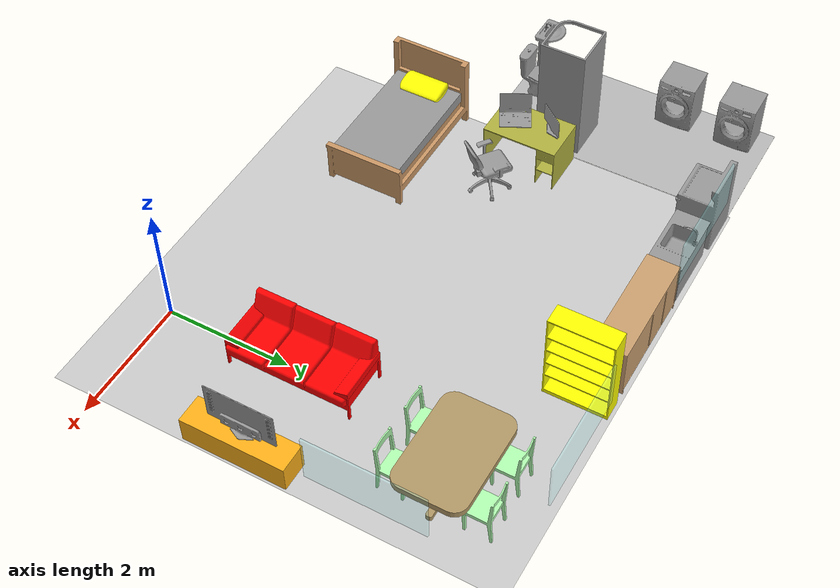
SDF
<sdf version="1.6">
 <world name="default">
  <model name="rai_tv_table">
   <link name="link_2">
    <visual name="visual">
     <pose>0 0 0.22 1.57 -0 0</pose>
     <geometry><mesh><uri>model://rai_tv_table/meshes/rai_tv_table.STL</uri><scale>1 1 1</scale></mesh></geometry>
     <material>
      <lighting>1</lighting>
      <script><uri>file://media/materials/scripts/gazebo.material</uri><name>Gazebo/Grey</name></script>
      <ambient>1 0.7 0.1 1</ambient>
      <diffuse>1 0.7 0.1 1</diffuse>
      <specular>0.01 0.01 0.01 1</specular>
      <emissive>0 0 0 1</emissive>
      <shader type="vertex"><normal_map>__default__</normal_map></shader>
     </material>
    </visual>
    <collision name="collision">
     <pose>0 -0.01 0.22 1.57 -0 0</pose>
     <geometry><box><size>1.65 0.44 0.45</size></box></geometry>
    </collision>
   </link>
   <static>1</static>
   <pose>1.50714 2.27374 0 0 0 -1.56966</pose>
  </model>
  <model name="rai_sofa">
   <link name="link_0">
    <visual name="visual">
     <pose>0 0 0 1.57 -0 0</pose>
     <geometry><mesh><uri>model://rai_sofa/meshes/rai_sofa.STL</uri><scale>1 1 1</scale></mesh></geometry>
     <material>
      <lighting>1</lighting>
      <script><uri>file://media/materials/scripts/gazebo.material</uri><name>Gazebo/Grey</name></script>
      <ambient>1 0 0 1</ambient>
      <diffuse>0.7 0.7 0.7 1</diffuse>
      <specular>0.01 0.01 0.01 1</specular>
      <emissive>0 0 0 1</emissive>
      <shader type="vertex"><normal_map>__default__</normal_map></shader>
     </material>
    </visual>
    <collision name="collision">
     <pose>-0.97 -0.45 0.4 0 -0 0</pose>
     <geometry><box><size>2 0.9 0.8</size></box></geometry>
    </collision>
   </link>
   <static>1</static>
   <pose>-0.482908 3.22557 0 0 -0 1.57101</pose>
  </model>
  <model name="rai_dinner_table">
   <link name="link_0">
    <visual name="visual">
     <pose>0 0 0.6 1.57 -0 0</pose>
     <geometry>
      <mesh><uri>model://rai_dinning_table/meshes/rai_dinning_table.STL</uri><scale>1 1 1</scale></mesh>
     </geometry>
     <material>
      <lighting>1</lighting>
      <script><uri>file://media/materials/scripts/gazebo.material</uri><name>Gazebo/Grey</name></script>
      <ambient>0.7 0.6 0.4 1</ambient>
      <diffuse>0.7 0.6 0.4 1</diffuse>
      <specular>0.01 0.01 0.01 1</specular>
      <emissive>0 0 0 1</emissive>
      <shader type="vertex"><normal_map>__default__</normal_map></shader>
     </material>
    </visual>
    <collision name="collision">
     <pose>0 0 0.6 1.57 -0 0</pose>
     <geometry>
      <mesh><uri>model://rai_dinning_table/meshes/rai_dinning_table.STL</uri><scale>1 1 1</scale></mesh>
     </geometry>
    </collision>
   </link>
   <static>1</static>
   <pose>0.516294 4.96542 0 0 -0 0</pose>
  </model>
  <model name="rai_chair">
   <link name="link_2">
    <visual name="visual">
     <pose>0 0.5 0 1.57 -0 0.26</pose>
     <geometry><mesh><uri>model://rai_chair/meshes/rai_chair.STL</uri><scale>1 1 1</scale></mesh></geometry>
     <material>
      <lighting>1</lighting>
      <script><uri>file://media/materials/scripts/gazebo.material</uri><name>Gazebo/Grey</name></script>
      <ambient>0 1 0.3 1</ambient>
      <diffuse>0.7 1 0.7 1</diffuse>
      <specular>0.01 0.01 0.01 1</specular>
      <emissive>0 0 0 1</emissive>
      <shader type="vertex"><normal_map>__default__</normal_map></shader>
     </material>
    </visual>
    <collision name="collision">
     <pose>0 0.5 0 1.57 -0 0.26</pose>
     <geometry><mesh><uri>model://rai_chair/meshes/rai_chair.STL</uri><scale>1 1 1</scale></mesh></geometry>
    </collision>
   </link>
   <static>1</static>
   <pose>0.144447 4.26667 0 0 -0 1.56943</pose>
  </model>
  <model name="rai_individual_bed">
   <link name="link_0">
    <pose>0 1.1e-05 0.014304 1.57 -0 0</pose>
    <inertial>
     <mass>2.77175</mass>
     <inertia><ixx>1.30512</ixx><ixy>0</ixy><ixz>0</ixz><iyy>1.45572</iyy><iyz>0</iyz><izz>0.612565</izz></inertia>
    </inertial>
    <gravity>0</gravity>
    <visual name="visual">
     <geometry>
      <mesh><uri>model://rai_individual_bed/meshes/rai_individual_bed_frame.STL</uri><scale>1 1 1</scale></mesh>
     </geometry>
     <material>
      <lighting>1</lighting>
      <script><uri>file://media/materials/scripts/gazebo.material</uri><name>Gazebo/Grey</name></script>
      <ambient>0.8 0.6 0.4 1</ambient>
      <diffuse>0.8 0.6 0.4 1</diffuse>
      <specular>0.01 0.01 0.01 1</specular>
      <emissive>0 0 0 1</emissive>
      <shader type="vertex"><normal_map>__default__</normal_map></shader>
     </material>
    </visual>
    <collision name="collision">
     <pose>0 0.34 0 0 -0 0</pose>
     <geometry><box><size>1.28532 0.67 2.18647</size></box></geometry>
     <surface>
      <friction>
       <ode><mu>1</mu><mu2>1</mu2><fdir1>0 0 0</fdir1><slip1>0</slip1><slip2>0</slip2></ode>
       <torsional>
        <coefficient>1</coefficient>
        <patch_radius>0</patch_radius>
        <surface_radius>0</surface_radius>
        <use_patch_radius>1</use_patch_radius>
        <ode><slip>0</slip></ode>
       </torsional>
      </friction>
      <bounce><restitution_coefficient>0</restitution_coefficient><threshold>1e+06</threshold></bounce>
      <contact>
       <collide_without_contact>0</collide_without_contact>
       <collide_without_contact_bitmask>1</collide_without_contact_bitmask>
       <collide_bitmask>1</collide_bitmask>
       <ode>
        <soft_cfm>0</soft_cfm>
        <soft_erp>0.2</soft_erp>
        <kp>1e+13</kp>
        <kd>1</kd>
        <max_vel>0.01</max_vel>
        <min_depth>0</min_depth>
       </ode>
       <bullet>
        <split_impulse>1</split_impulse>
        <split_impulse_penetration_threshold>-0.01</split_impulse_penetration_threshold>
        <soft_cfm>0</soft_cfm>
        <soft_erp>0.2</soft_erp>
        <kp>1e+13</kp>
        <kd>1</kd>
       </bullet>
      </contact>
     </surface>
    </collision>
   </link>
   <link name="link_1">
    <pose>0 0 0 1.57 -0 0</pose>
    <inertial>
     <mass>1</mass>
     <inertia>
      <ixx>0.166667</ixx>
      <ixy>0</ixy>
      <ixz>0</ixz>
      <iyy>0.166667</iyy>
      <iyz>0</iyz>
      <izz>0.166667</izz>
     </inertia>
    </inertial>
    <gravity>0</gravity>
    <visual name="visual">
     <geometry>
      <mesh><uri>model://rai_individual_bed/meshes/rai_individual_mattres.STL</uri><scale>1 1 1</scale></mesh>
     </geometry>
     <material>
      <lighting>1</lighting>
      <script><uri>file://media/materials/scripts/gazebo.material</uri><name>Gazebo/Grey</name></script>
      <ambient>0.95 0.95 0.95 1</ambient>
      <diffuse>0.95 0.95 0.95 1</diffuse>
      <specular>0.01 0.01 0.01 1</specular>
      <emissive>0 0 0 1</emissive>
      <shader type="vertex"><normal_map>__default__</normal_map></shader>
     </material>
    </visual>
   </link>
   <link name="link_2">
    <pose>0 0 0 1.57 -0 0</pose>
    <inertial>
     <mass>1</mass>
     <inertia>
      <ixx>0.166667</ixx>
      <ixy>0</ixy>
      <ixz>0</ixz>
      <iyy>0.166667</iyy>
      <iyz>0</iyz>
      <izz>0.166667</izz>
     </inertia>
    </inertial>
    <gravity>0</gravity>
    <visual name="visual">
     <geometry>
      <mesh><uri>model://rai_individual_bed/meshes/rai_individual_pillow.STL</uri><scale>1 1 1</scale></mesh>
     </geometry>
     <material>
      <lighting>1</lighting>
      <script><uri>file://media/materials/scripts/gazebo.material</uri><name>Gazebo/Grey</name></script>
      <ambient>1 1 0 1</ambient>
      <diffuse>0.7 0.7 0.7 1</diffuse>
      <specular>0.01 0.01 0.01 1</specular>
      <emissive>0 0 0 1</emissive>
      <shader type="vertex"><normal_map>__default__</normal_map></shader>
     </material>
    </visual>
   </link>
   <static>1</static>
   <pose>-4.5208 1.1886 0 0 -0 1.57029</pose>
  </model>
  <model name="rai_computer_table">
   <link name="link_6">
    <visual name="visual">
     <pose>0 0 0 1.57 -0 0</pose>
     <geometry>
      <mesh><uri>model://rai_computer_table/meshes/rai_computer_table.STL</uri><scale>1 1 1</scale></mesh>
     </geometry>
     <material>
      <lighting>1</lighting>
      <script><uri>file://media/materials/scripts/gazebo.material</uri><name>Gazebo/Grey</name></script>
      <ambient>1 0.5 0.25 1</ambient>
      <diffuse>0.7 0.7 0.25 1</diffuse>
      <specular>0.01 0.01 0.01 1</specular>
      <emissive>0 0 0 1</emissive>
      <shader type="vertex"><normal_map>__default__</normal_map></shader>
     </material>
    </visual>
    <collision name="collision">
     <pose>0 0 0 1.57 -0 0</pose>
     <geometry>
      <mesh><uri>model://rai_computer_table/meshes/rai_computer_table.STL</uri><scale>1 1 1</scale></mesh>
     </geometry>
    </collision>
   </link>
   <static>1</static>
   <pose>-5.24344 3.11187 0 0 -0 1.57066</pose>
  </model>
  <model name="rai_desktop_chair">
   <link name="link_1">
    <pose>0 0 0.44 1.57312 -0 0</pose>
    <visual name="visual">
     <geometry>
      <mesh><uri>model://rai_desktop_chair/meshes/rai_desktop_chair.STL</uri><scale>1 1 1</scale></mesh>
     </geometry>
     <material>
      <lighting>1</lighting>
      <script><uri>file://media/materials/scripts/gazebo.material</uri><name>Gazebo/Grey</name></script>
      <ambient>0.1 0.1 0.1 0.1</ambient>
      <diffuse>0.3 0.3 0.3 0.5</diffuse>
      <specular>0.01 0.01 0.01 1</specular>
      <emissive>0 0 0 0.5</emissive>
      <shader type="vertex"><normal_map>__default__</normal_map></shader>
     </material>
    </visual>
    <collision name="collision">
     <pose>0.24 0.04 -0.33 0 -0 0</pose>
     <geometry><box><size>0.68 0.98 0.65</size></box></geometry>
    </collision>
   </link>
   <static>1</static>
   <pose>-4.54757 3.20845 0 0 0 -2.19838</pose>
  </model>
  <model name="rai_chair_0">
   <link name="link_2">
    <visual name="visual">
     <pose>0 0.5 0 1.57 -0 0.26</pose>
     <geometry><mesh><uri>model://rai_chair/meshes/rai_chair.STL</uri><scale>1 1 1</scale></mesh></geometry>
     <material>
      <lighting>1</lighting>
      <script><uri>file://media/materials/scripts/gazebo.material</uri><name>Gazebo/Grey</name></script>
      <ambient>0 1 0.3 1</ambient>
      <diffuse>0.7 1 0.7 1</diffuse>
      <specular>0.01 0.01 0.01 1</specular>
      <emissive>0 0 0 1</emissive>
      <shader type="vertex"><normal_map>__default__</normal_map></shader>
     </material>
    </visual>
    <collision name="collision">
     <pose>0 0.5 0 1.57 -0 0.26</pose>
     <geometry><mesh><uri>model://rai_chair/meshes/rai_chair.STL</uri><scale>1 1 1</scale></mesh></geometry>
    </collision>
   </link>
   <static>1</static>
   <pose>0.907553 4.25434 0 0 -0 1.56758</pose>
  </model>
  <model name="rai_tv">
   <link name="link_3">
    <visual name="visual">
     <pose>0 0 0.4 1.57 -0 0</pose>
     <geometry><mesh><uri>model://rai_tv/meshes/rai_tv.STL</uri><scale>1 1 1</scale></mesh></geometry>
     <material>
      <lighting>1</lighting>
      <script><uri>file://media/materials/scripts/gazebo.material</uri><name>Gazebo/Grey</name></script>
      <ambient>0.1 0.1 0.1 0.1</ambient>
      <diffuse>0.3 0.3 0.3 0.5</diffuse>
      <specular>0.01 0.01 0.01 1</specular>
      <emissive>0 0 0 0.5</emissive>
      <shader type="vertex"><normal_map>__default__</normal_map></shader>
     </material>
    </visual>
    <collision name="collision">
     <pose>0 0.01 0.36 0 -0 0</pose>
     <geometry><box><size>1.1 0.05 0.71</size></box></geometry>
    </collision>
   </link>
   <static>1</static>
   <pose>1.49815 2.31639 0.442289 0 0 -1.56937</pose>
  </model>
  <model name="library_1">
   <link name="link_1">
    <visual name="visual">
     <pose>0 0 1.235 1.57 -0 0</pose>
     <geometry>
      <mesh><uri>model://rai_self_book/meshes/rai_self_book.STL</uri><scale>1 1 1</scale></mesh>
     </geometry>
     <material>
      <lighting>1</lighting>
      <script><uri>file://media/materials/scripts/gazebo.material</uri><name>Gazebo/Grey</name></script>
      <ambient>1 1 0 1</ambient>
      <diffuse>1 1 0 1</diffuse>
      <specular>0.01 0.01 0.01 1</specular>
      <emissive>0 0 0 1</emissive>
      <shader type="vertex"><normal_map>__default__</normal_map></shader>
     </material>
    </visual>
    <collision name="collision">
     <pose>-0.01 -0.16 0.78 0 -0 0</pose>
     <geometry><box><size>1.02 0.32 1.56</size></box></geometry>
    </collision>
   </link>
   <static>1</static>
   <pose>-1.65718 5.82729 0 0 -0 1.57218</pose>
  </model>
  <model name="rai_chair_1">
   <link name="link_2">
    <visual name="visual">
     <pose>0 0.5 0 1.57 -0 0.26</pose>
     <geometry><mesh><uri>model://rai_chair/meshes/rai_chair.STL</uri><scale>1 1 1</scale></mesh></geometry>
     <material>
      <lighting>1</lighting>
      <script><uri>file://media/materials/scripts/gazebo.material</uri><name>Gazebo/Grey</name></script>
      <ambient>0 1 0.3 1</ambient>
      <diffuse>0.7 1 0.7 1</diffuse>
      <specular>0.01 0.01 0.01 1</specular>
      <emissive>0 0 0 1</emissive>
      <shader type="vertex"><normal_map>__default__</normal_map></shader>
     </material>
    </visual>
    <collision name="collision">
     <pose>0 0.5 0 1.57 -0 0.26</pose>
     <geometry><mesh><uri>model://rai_chair/meshes/rai_chair.STL</uri><scale>1 1 1</scale></mesh></geometry>
    </collision>
   </link>
   <static>1</static>
   <pose>0.894623 5.69353 0 0 0 -1.57213</pose>
  </model>
  <model name="rai_chair_2">
   <link name="link_2">
    <visual name="visual">
     <pose>0 0.5 0 1.57 -0 0.26</pose>
     <geometry><mesh><uri>model://rai_chair/meshes/rai_chair.STL</uri><scale>1 1 1</scale></mesh></geometry>
     <material>
      <lighting>1</lighting>
      <script><uri>file://media/materials/scripts/gazebo.material</uri><name>Gazebo/Grey</name></script>
      <ambient>0 1 0.3 1</ambient>
      <diffuse>0.7 1 0.7 1</diffuse>
      <specular>0.01 0.01 0.01 1</specular>
      <emissive>0 0 0 1</emissive>
      <shader type="vertex"><normal_map>__default__</normal_map></shader>
     </material>
    </visual>
    <collision name="collision">
     <pose>0 0.5 0 1.57 -0 0.26</pose>
     <geometry><mesh><uri>model://rai_chair/meshes/rai_chair.STL</uri><scale>1 1 1</scale></mesh></geometry>
    </collision>
   </link>
   <static>1</static>
   <pose>0.12405 5.68717 0 0 0 -1.56906</pose>
  </model>
  <model name="rai_kitchen_table">
   <link name="link_0">
    <visual name="visual">
     <pose>0 0.25 0.4 1.57 -0 0</pose>
     <geometry>
      <mesh><uri>model://rai_kitchen_table/meshes/rai_kitchen_table.STL</uri><scale>1 1 1</scale></mesh>
     </geometry>
     <material>
      <lighting>1</lighting>
      <script><uri>file://media/materials/scripts/gazebo.material</uri><name>Gazebo/Grey</name></script>
      <ambient>0.8 0.63 0.44 1</ambient>
      <diffuse>0.8 0.63 0.44 1</diffuse>
      <specular>0.01 0.01 0.01 1</specular>
      <emissive>0 0 0 1</emissive>
      <shader type="vertex"><normal_map>__default__</normal_map></shader>
     </material>
    </visual>
    <collision name="collision">
     <pose>-0.82 -0 0.46 0 -0 0</pose>
     <geometry><box><size>1.81 0.51 0.9</size></box></geometry>
    </collision>
   </link>
   <static>1</static>
   <pose>-1.88047 6.07992 0 0 -0 0</pose>
  </model>
  <model name="rai_kitchen_sink">
   <link name="link_4">
    <visual name="visual">
     <pose>0 0.72 -0.27 1.57 -0 0</pose>
     <geometry>
      <mesh><uri>model://rai_kitchen_sink/meshes/rai_kitchen_sink.STL</uri><scale>1 1 1</scale></mesh>
     </geometry>
     <material>
      <lighting>1</lighting>
      <script><uri>file://media/materials/scripts/gazebo.material</uri><name>Gazebo/Grey</name></script>
      <ambient>0.5 0.5 0.5 1</ambient>
      <diffuse>0.5 0.5 0.5 1</diffuse>
      <specular>0.01 0.01 0.01 1</specular>
      <emissive>0 0 0 1</emissive>
      <shader type="vertex"><normal_map>__default__</normal_map></shader>
     </material>
    </visual>
    <collision name="collision">
     <pose>0.5 -0.006 0.36 0 -0 0</pose>
     <geometry><box><size>1.05 0.53 0.72</size></box></geometry>
    </collision>
   </link>
   <static>1</static>
   <pose>-4.73671 6.05365 0 0 -0 0</pose>
  </model>
  <model name="rai_oven">
   <link name="link_1">
    <visual name="visual">
     <pose>0 0 0 1.57 -0 0</pose>
     <geometry><mesh><uri>model://rai_oven/meshes/rai_oven.STL</uri><scale>1 1 1</scale></mesh></geometry>
     <material>
      <lighting>1</lighting>
      <script><uri>file://media/materials/scripts/gazebo.material</uri><name>Gazebo/Grey</name></script>
      <ambient>0.85 0.85 0.85 1</ambient>
      <diffuse>0.85 0.85 0.85 1</diffuse>
      <specular>0.01 0.01 0.01 1</specular>
      <emissive>0 0 0 1</emissive>
      <shader type="vertex"><normal_map>__default__</normal_map></shader>
     </material>
    </visual>
    <collision name="collision">
     <pose>0 0 0.45 0 -0 0</pose>
     <geometry><box><size>0.74 0.61 0.91</size></box></geometry>
    </collision>
   </link>
   <static>1</static>
   <pose>-5.24755 6.03302 0 0 -0 0</pose>
  </model>
  <model name="rai_washing_machine">
   <link name="link_2">
    <visual name="visual">
     <geometry>
      <mesh><uri>model://rai_washing_machine/meshes/rai_washing_machine.STL</uri><scale>1 1 1</scale></mesh>
     </geometry>
     <material>
      <lighting>1</lighting>
      <script><uri>file://media/materials/scripts/gazebo.material</uri><name>Gazebo/Grey</name></script>
      <ambient>0.45 0.45 0.45 0.45</ambient>
      <diffuse>0.45 0.45 0.45 0.45</diffuse>
      <specular>0.01 0.01 0.01 1</specular>
      <emissive>0 0 0 1</emissive>
      <shader type="vertex"><normal_map>__default__</normal_map></shader>
     </material>
    </visual>
    <collision name="collision">
     <pose>0.3 0.28 0.42 0 -0 0</pose>
     <geometry><box><size>0.6 0.59 0.84</size></box></geometry>
    </collision>
   </link>
   <static>1</static>
   <pose>-7.60233 5.07788 0 0 0 -1.56924</pose>
  </model>
  <model name="rai_washing_machine_0">
   <link name="link_2">
    <visual name="visual">
     <geometry>
      <mesh><uri>model://rai_washing_machine/meshes/rai_washing_machine.STL</uri><scale>1 1 1</scale></mesh>
     </geometry>
     <material>
      <lighting>1</lighting>
      <script><uri>file://media/materials/scripts/gazebo.material</uri><name>Gazebo/Grey</name></script>
      <ambient>0.45 0.45 0.45 0.45</ambient>
      <diffuse>0.45 0.45 0.45 0.45</diffuse>
      <specular>0.01 0.01 0.01 1</specular>
      <emissive>0 0 0 1</emissive>
      <shader type="vertex"><normal_map>__default__</normal_map></shader>
     </material>
    </visual>
    <collision name="collision">
     <pose>0.3 0.28 0.42 0 -0 0</pose>
     <geometry><box><size>0.6 0.59 0.84</size></box></geometry>
    </collision>
   </link>
   <static>1</static>
   <pose>-7.60777 6.09175 0 0 0 -1.56829</pose>
  </model>
  <model name="rai_toilette">
   <link name="link_4">
    <visual name="visual">
     <pose>0 0.06 0 1.57 -0 0</pose>
     <geometry><mesh><uri>model://rai_toilette/meshes/rai_toilette.STL</uri><scale>1 1 1</scale></mesh></geometry>
     <material>
      <lighting>1</lighting>
      <script><uri>file://media/materials/scripts/gazebo.material</uri><name>Gazebo/Grey</name></script>
      <ambient>0.95 0.95 0.95 0.95</ambient>
      <diffuse>0.95 0.95 0.95 0.95</diffuse>
      <specular>0.01 0.01 0.01 1</specular>
      <emissive>0 0 0 1</emissive>
      <shader type="vertex"><normal_map>__default__</normal_map></shader>
     </material>
    </visual>
    <collision name="collision">
     <pose>0 0 0.21 0 -0 0</pose>
     <geometry><box><size>0.39 0.53 0.43</size></box></geometry>
    </collision>
   </link>
   <static>1</static>
   <pose>-6.74834 2.57999 0 0 0 -3.14158</pose>
  </model>
  <model name="rai_shower">
   <link name="link_0">
    <visual name="visual">
     <geometry><mesh><uri>model://rai_shower/meshes/rai_shower.STL</uri><scale>1 1 1</scale></mesh></geometry>
     <material>
      <lighting>1</lighting>
      <script><uri>file://media/materials/scripts/gazebo.material</uri><name>Gazebo/Grey</name></script>
      <ambient>1 1 1 1</ambient>
      <diffuse>0.7 0.7 0.7 1</diffuse>
      <specular>0.01 0.01 0.01 1</specular>
      <emissive>0 0 0 1</emissive>
      <shader type="vertex"><normal_map>__default__</normal_map></shader>
     </material>
    </visual>
    <collision name="collision">
     <geometry><mesh><uri>model://rai_shower/meshes/rai_shower.STL</uri><scale>1 1 1</scale></mesh></geometry>
    </collision>
   </link>
   <static>1</static>
   <pose>-5.76918 2.97077 0 0 -0 0</pose>
  </model>
  <model name="rai_bathroom_sink">
   <link name="link_3">
    <visual name="visual">
     <pose>-0.05 0.115 0 1.57 -0 0</pose>
     <geometry>
      <mesh><uri>model://rai_bathroom_sink/meshes/rai_bathroom_sink.STL</uri><scale>1 1 1</scale></mesh>
     </geometry>
     <material>
      <lighting>1</lighting>
      <script><uri>file://media/materials/scripts/gazebo.material</uri><name>Gazebo/Grey</name></script>
      <ambient>0.93 0.93 0.93 0.93</ambient>
      <diffuse>0.93 0.93 0.93 0.93</diffuse>
      <specular>0.01 0.01 0.01 1</specular>
      <emissive>0 0 0 1</emissive>
      <shader type="vertex"><normal_map>__default__</normal_map></shader>
     </material>
    </visual>
    <collision name="collision">
     <pose>0 0 0.4 0 -0 0</pose>
     <geometry><box><size>0.15 0.15 0.8</size></box></geometry>
    </collision>
   </link>
   <static>1</static>
   <pose>-7.38435 2.30191 0 0 -0 0</pose>
  </model>
  <model name="rai_laptop_0">
   <link name="link_7">
    <visual name="visual">
     <pose>-0.04 0.48 0.025 1.57 -0 0</pose>
     <geometry><mesh><uri>model://rai_laptop/meshes/rai_laptop.STL</uri><scale>1 1 1</scale></mesh></geometry>
     <material>
      <lighting>1</lighting>
      <script><uri>file://media/materials/scripts/gazebo.material</uri><name>Gazebo/Grey</name></script>
      <ambient>0.2 0.2 0.2 0.5</ambient>
      <diffuse>0.7 0.7 0.7 0.5</diffuse>
      <specular>0.01 0.01 0.01 1</specular>
      <emissive>0 0 0 1</emissive>
      <shader type="vertex"><normal_map>__default__</normal_map></shader>
     </material>
    </visual>
    <collision name="collision">
     <pose>-0 -0.01 0.01 0 -0 0</pose>
     <geometry><box><size>0.5 0.35 0.03</size></box></geometry>
    </collision>
   </link>
   <static>1</static>
   <pose>-5.27896 2.8374 0.743253 0 -0 2.05318</pose>
  </model>
  <model name="rai_pc_1">
   <link name="link_4">
    <visual name="visual">
     <pose>0 0 0.235 1.57 -0 0</pose>
     <geometry>
      <mesh><uri>model://rai_monitor_pc/meshes/rai_monitor_pc.STL</uri><scale>1 1 1</scale></mesh>
     </geometry>
     <material>
      <lighting>1</lighting>
      <script><uri>file://media/materials/scripts/gazebo.material</uri><name>Gazebo/Grey</name></script>
      <ambient>0.1 0.1 0.1 0.1</ambient>
      <diffuse>0.3 0.3 0.3 0.5</diffuse>
      <specular>0.01 0.01 0.01 1</specular>
      <emissive>0 0 0 0.5</emissive>
      <shader type="vertex"><normal_map>__default__</normal_map></shader>
     </material>
    </visual>
    <collision name="collision">
     <pose>0 0.005 0.19 0 -0 0</pose>
     <geometry><box><size>0.499 0.05 0.38</size></box></geometry>
    </collision>
   </link>
   <static>1</static>
   <pose>-5.31466 3.45197 0.737344 0 -0 0.909325</pose>
  </model>
  <model name="rai_floor_house">
   <static>1</static>
   <link name="link">
    <collision name="collision">
     <geometry><plane><normal>0 0 1</normal><size>100 100</size></plane></geometry>
     <surface><friction><ode><mu>100</mu><mu2>50</mu2></ode></friction></surface>
    </collision>
    <visual name="visual">
     <pose>2.34984 -1.8866 0 0 -0 0</pose>
     <cast_shadows>0</cast_shadows>
     <geometry><plane><normal>0 0 1</normal><size>7.41745 11.788</size></plane></geometry>
     <material>
      <script>
       <uri>model://rai_floor_house/materials/scripts/repeated.material</uri>
       <name>RepeatedTexture</name>
      </script>
     </material>
    </visual>
    <visual name="visual_2">
     <pose>-2.34984 1.8866 0 0 -0 0</pose>
     <cast_shadows>0</cast_shadows>
     <geometry><plane><normal>0 0 1</normal><size>1.98601 4.16918</size></plane></geometry>
     <material>
      <script>
       <uri>model://rai_floor_house/materials/scripts/repeated_2.material</uri>
       <name>RepeatedTexture_2</name>
      </script>
     </material>
    </visual>
    <visual name="visual_3">
     <cast_shadows>0</cast_shadows>
     <geometry><plane><normal>0 0 1</normal><size>100 100</size></plane></geometry>
     <material>
      <script><uri>file://media/materials/scripts/gazebo.material</uri><name>Gazebo/Grey</name></script>
     </material>
     <transparency>1</transparency>
    </visual>
   </link>
   <pose>-4.30919 2.36621 0 0 -0 0</pose>
  </model>
  <model name="rai_window_0">
   <link name="link_0">
    <pose>0 0 0 1.57 -0 1.57</pose>
    <visual name="visual">
     <geometry><mesh><uri>model://rai_window/meshes/rai_window.STL</uri><scale>1 1 1</scale></mesh></geometry>
     <material>
      <lighting>1</lighting>
      <script><uri>file://media/materials/scripts/gazebo.material</uri><name>Gazebo/Grey</name></script>
      <ambient>0.53 1 1 0.2</ambient>
      <diffuse>0.53 1 1 0.2</diffuse>
      <specular>0.01 0.01 0.01 1</specular>
      <emissive>0 0 0 1</emissive>
      <shader type="vertex"><normal_map>__default__</normal_map></shader>
     </material>
     <transparency>0.5</transparency>
    </visual>
   </link>
   <static>1</static>
   <pose>1.80409 3.52601 0.80097 0 -0 0</pose>
  </model>
  <model name="rai_window_3">
   <link name="link_0">
    <pose>0 0 0 1.57 -0 1.57</pose>
    <visual name="visual">
     <geometry><mesh><uri>model://rai_window/meshes/rai_window.STL</uri><scale>1 1 1</scale></mesh></geometry>
     <material>
      <lighting>1</lighting>
      <script><uri>file://media/materials/scripts/gazebo.material</uri><name>Gazebo/Grey</name></script>
      <ambient>0.53 1 1 0.2</ambient>
      <diffuse>0.53 1 1 0.2</diffuse>
      <specular>0.01 0.01 0.01 1</specular>
      <emissive>0 0 0 1</emissive>
      <shader type="vertex"><normal_map>__default__</normal_map></shader>
     </material>
     <transparency>0.5</transparency>
    </visual>
   </link>
   <static>1</static>
   <pose>0.711532 6.40526 0.800681 0 -0 1.5697</pose>
  </model>
  <model name="rai_window_4">
   <link name="link_0">
    <pose>0 0 0 1.57 -0 1.57</pose>
    <visual name="visual">
     <geometry><mesh><uri>model://rai_window/meshes/rai_window.STL</uri><scale>1 1 1</scale></mesh></geometry>
     <material>
      <lighting>1</lighting>
      <script><uri>file://media/materials/scripts/gazebo.material</uri><name>Gazebo/Grey</name></script>
      <ambient>0.53 1 1 0.2</ambient>
      <diffuse>0.53 1 1 0.2</diffuse>
      <specular>0.01 0.01 0.01 1</specular>
      <emissive>0 0 0 1</emissive>
      <shader type="vertex"><normal_map>__default__</normal_map></shader>
     </material>
     <transparency>0.5</transparency>
    </visual>
   </link>
   <static>1</static>
   <pose>-5.17327 6.40557 0.797589 0 0 -1.5713</pose>
  </model>
 </world>
</sdf>
